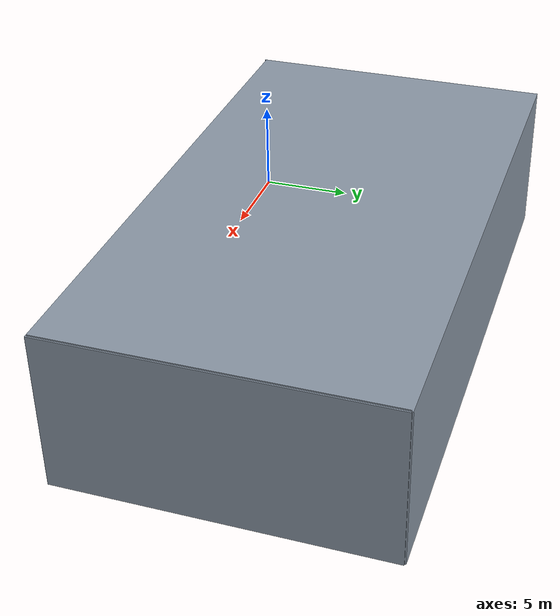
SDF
<?xml version='1.0' encoding='utf-8'?>
<sdf version='1.7'>
  <world name='default'>
    <!-- Physics -->
    <plugin filename="libignition-gazebo-physics-system.so" name="ignition::gazebo::systems::Physics">
    </plugin>

    <!-- Forwards simulation state to the GUI -->
    <plugin filename="libignition-gazebo-scene-broadcaster-system.so" name="ignition::gazebo::systems::SceneBroadcaster">
    </plugin>

    <!-- Processes user commands, like translate and create -->
    <plugin filename="libignition-gazebo-user-commands-system.so" name="ignition::gazebo::systems::UserCommands">
    </plugin>

    <!-- Generates rendering sensor data -->
    <plugin filename="libignition-gazebo-sensors-system.so" name="ignition::gazebo::systems::Sensors">
      <render_engine>ogre2</render_engine>
    </plugin>

    <plugin filename="libignition-gazebo-imu-system.so" name="ignition::gazebo::systems::Imu">
    </plugin>

    <light type='directional' name='direct_light'>
      <visualize>false</visualize>
      <cast_shadows>true</cast_shadows>
      <pose>14.6 8.1 16 0.35 0.55 0</pose>
      <diffuse>1.0 1.0 1.0 1</diffuse>
      <specular>0.5 0.5 0.5 1</specular>
      <attenuation>
        <range>1000</range>
        <constant>0.9</constant>
        <linear>0.01</linear>
        <quadratic>0.001</quadratic>
      </attenuation>
      <direction>-0.35 -0.2 -0.92</direction>
    </light>

    <model name='rmuc_2026'>
      <include>
        <uri>model://rmuc_2026</uri>
      </include>
      <pose>0 0 0 0 0 0</pose>
      <static>true</static>
    </model>
  </world>
</sdf>

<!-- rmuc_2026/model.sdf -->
<sdf version='1.6'>
  <model name='rmuc_2026'>
    <static>true</static>
    <link name='body'>
      <pose frame=''>0 0 0.2 0 0 0</pose>
      <self_collide>0</self_collide>
      <kinematic>0</kinematic>
      <gravity>1</gravity>
      <visual name='visual'>
        <geometry>
          <mesh>
            <uri>model://rmuc_2026/meshes/rmuc_2026.stl</uri>
            <scale>1 1 1</scale>
          </mesh>
        </geometry>
        <material>
          <ambient>0.16 0.18 0.20 1</ambient>
          <diffuse>0.55 0.60 0.66 1</diffuse>
          <specular>0.18 0.18 0.18 1</specular>
          <emissive>0.02 0.02 0.02 1</emissive>
        </material>
      </visual>
      <collision name='collision'>
        <geometry>
          <mesh>
            <uri>model://rmuc_2026/meshes/rmuc_2026.stl</uri>
            <scale>1 1 1</scale>
          </mesh>
        </geometry>
      </collision>
    </link>
  </model>
</sdf>
